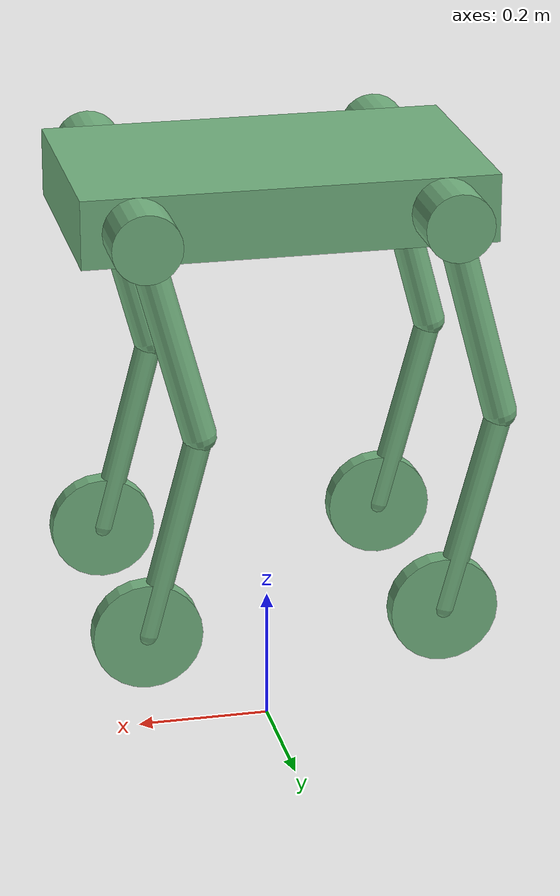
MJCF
<mujoco model="green_wheeled_quadruped">

  <default>
    <geom rgba="0.45 0.7 0.5 1" density="1000"/>
    <joint damping="1.0" armature="0.01" limited="true"/>
    <motor gear="80"/>
  </default>

  <worldbody>
    <body name="torso" pos="0 0 0.85">
      <camera name="tracking_cam" mode="trackcom" pos="-6 -6 6" xyaxes="1 -1 0 0 1 1"/>
      <freejoint/>
      <geom name="torso_box" type="box" size="0.3 0.18 0.05"/>

      <body name="fl_leg" pos="0.22 0.20 0">
        <joint name="fl_hip" type="hinge" axis="0 1 0" range="-60 60"/>
        <geom name="fl_hip_cyl" type="cylinder" fromto="0 -0.03 0 0 0.06 0" size="0.05"/>
        <geom name="fl_thigh" type="capsule" fromto="0 0 0 -0.08 0 -0.3" size="0.025"/>
        <body name="fl_shin" pos="-0.08 0 -0.3">
          <joint name="fl_knee" type="hinge" axis="0 1 0" range="-120 0"/>
          <geom name="fl_shin_geom" type="capsule" fromto="0 0 0 0.08 0 -0.3" size="0.02"/>
          <body name="fl_wheel_hub" pos="0.08 0 -0.3">
            <joint name="fl_wheel" type="hinge" axis="0 1 0" limited="false"/>
            <geom name="fl_wheel_disc" type="cylinder" size="0.08 0.015" quat="0.7071 0.7071 0 0"
                  friction="1.5 0.01 0.005" rgba="0.45 0.7 0.5 1"/>
            <site name="fl_wheel_site" pos="0 0 0"/>
          </body>
        </body>
      </body>

      <body name="fr_leg" pos="0.22 -0.20 0">
        <joint name="fr_hip" type="hinge" axis="0 1 0" range="-60 60"/>
        <geom name="fr_hip_cyl" type="cylinder" fromto="0 0.03 0 0 -0.06 0" size="0.05"/>
        <geom name="fr_thigh" type="capsule" fromto="0 0 0 -0.08 0 -0.3" size="0.025"/>
        <body name="fr_shin" pos="-0.08 0 -0.3">
          <joint name="fr_knee" type="hinge" axis="0 1 0" range="-120 0"/>
          <geom name="fr_shin_geom" type="capsule" fromto="0 0 0 0.08 0 -0.3" size="0.02"/>
          <body name="fr_wheel_hub" pos="0.08 0 -0.3">
            <joint name="fr_wheel" type="hinge" axis="0 1 0" limited="false"/>
            <geom name="fr_wheel_disc" type="cylinder" size="0.08 0.015" quat="0.7071 0.7071 0 0"
                  friction="1.5 0.01 0.005" rgba="0.45 0.7 0.5 1"/>
            <site name="fr_wheel_site" pos="0 0 0"/>
          </body>
        </body>
      </body>

      <body name="bl_leg" pos="-0.22 0.20 0">
        <joint name="bl_hip" type="hinge" axis="0 1 0" range="-60 60"/>
        <geom name="bl_hip_cyl" type="cylinder" fromto="0 -0.03 0 0 0.06 0" size="0.05"/>
        <geom name="bl_thigh" type="capsule" fromto="0 0 0 -0.08 0 -0.3" size="0.025"/>
        <body name="bl_shin" pos="-0.08 0 -0.3">
          <joint name="bl_knee" type="hinge" axis="0 1 0" range="-120 0"/>
          <geom name="bl_shin_geom" type="capsule" fromto="0 0 0 0.08 0 -0.3" size="0.02"/>
          <body name="bl_wheel_hub" pos="0.08 0 -0.3">
            <joint name="bl_wheel" type="hinge" axis="0 1 0" limited="false"/>
            <geom name="bl_wheel_disc" type="cylinder" size="0.08 0.015" quat="0.7071 0.7071 0 0"
                  friction="1.5 0.01 0.005" rgba="0.45 0.7 0.5 1"/>
            <site name="bl_wheel_site" pos="0 0 0"/>
          </body>
        </body>
      </body>

      <body name="br_leg" pos="-0.22 -0.20 0">
        <joint name="br_hip" type="hinge" axis="0 1 0" range="-60 60"/>
        <geom name="br_hip_cyl" type="cylinder" fromto="0 0.03 0 0 -0.06 0" size="0.05"/>
        <geom name="br_thigh" type="capsule" fromto="0 0 0 -0.08 0 -0.3" size="0.025"/>
        <body name="br_shin" pos="-0.08 0 -0.3">
          <joint name="br_knee" type="hinge" axis="0 1 0" range="-120 0"/>
          <geom name="br_shin_geom" type="capsule" fromto="0 0 0 0.08 0 -0.3" size="0.02"/>
          <body name="br_wheel_hub" pos="0.08 0 -0.3">
            <joint name="br_wheel" type="hinge" axis="0 1 0" limited="false"/>
            <geom name="br_wheel_disc" type="cylinder" size="0.08 0.015" quat="0.7071 0.7071 0 0"
                  friction="1.5 0.01 0.005" rgba="0.45 0.7 0.5 1"/>
            <site name="br_wheel_site" pos="0 0 0"/>
          </body>
        </body>
      </body>
    </body>
  </worldbody>

  <actuator>
    <motor joint="fl_hip" gear="80"/>
    <motor joint="fl_knee" gear="80"/>
    <motor joint="fr_hip" gear="80"/>
    <motor joint="fr_knee" gear="80"/>
    <motor joint="bl_hip" gear="80"/>
    <motor joint="bl_knee" gear="80"/>
    <motor joint="br_hip" gear="80"/>
    <motor joint="br_knee" gear="80"/>

    <velocity joint="fl_wheel" gear="20"/>
    <velocity joint="fr_wheel" gear="20"/>
    <velocity joint="bl_wheel" gear="20"/>
    <velocity joint="br_wheel" gear="20"/>
  </actuator>
</mujoco>
